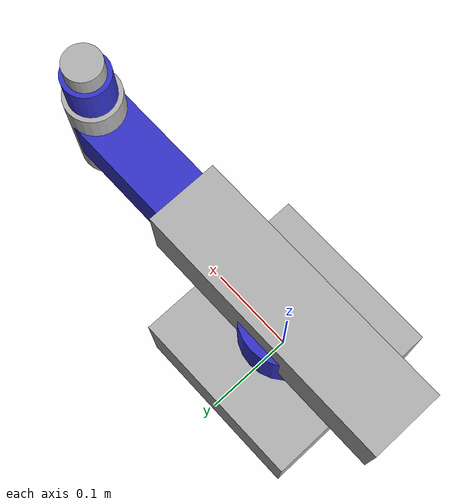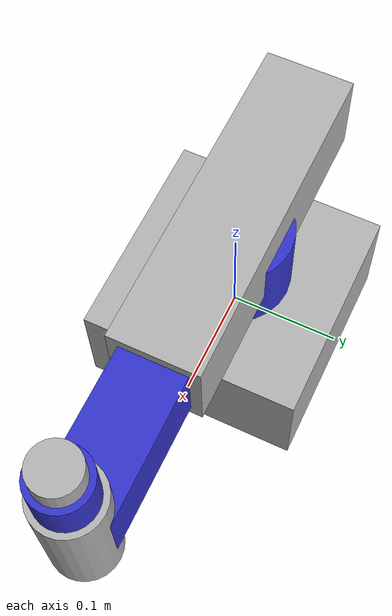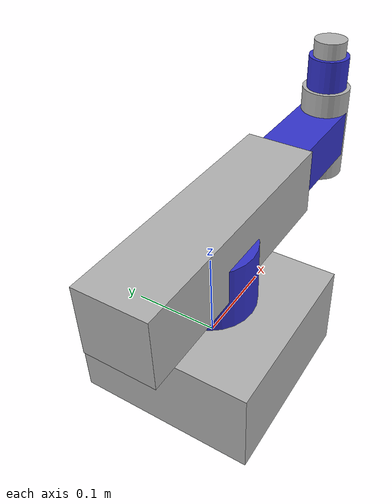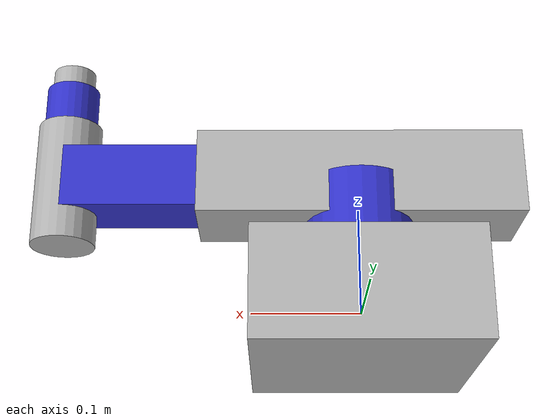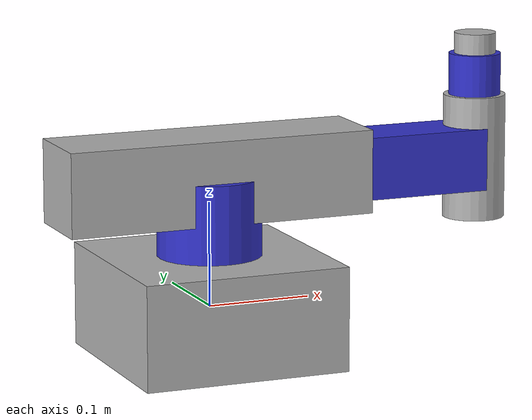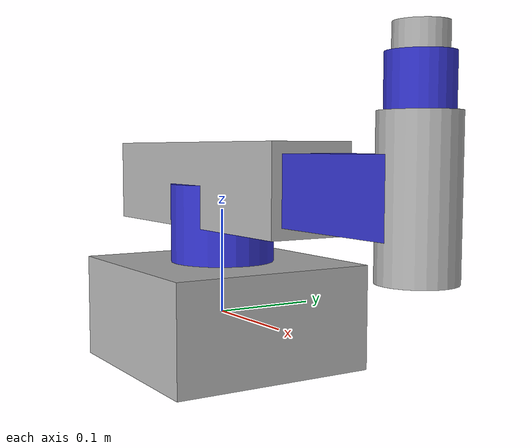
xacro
<?xml version="1.0"?>
<robot xmlns:xacro="http://www.ros.org/wiki/xacro" name="itri_arm">

  <!-- Import ros2_control description -->
  <xacro:include filename="$(find itri_arm)/urdf/itri_arm.ros2_control.xacro" />

  <!-- Define some colors -->
  <material name="grey">
    <color rgba="0.7 0.7 0.7 1"/>
  </material>

  <material name="blue">
    <color rgba="0.2 0.2 0.8 1"/>
  </material>

  <!-- Base link -->
  <link name="base_link">
    <visual>
      <geometry>
        <box size="0.2 0.2 0.1"/>
      </geometry>
      <material name="grey"/>
    </visual>
    <collision>
      <geometry>
        <box size="0.2 0.2 0.1"/>
      </geometry>
    </collision>
    <inertial>
      <mass value="1.0"/>
      <inertia ixx="0.01" ixy="0" ixz="0" iyy="0.01" iyz="0" izz="0.01"/>
    </inertial>
  </link>

  <!-- Link 1 -->
  <link name="link_1">
    <visual>
      <geometry>
        <cylinder length="0.15" radius="0.05"/>
      </geometry>
      <material name="blue"/>
    </visual>
    <collision>
      <geometry>
        <cylinder length="0.15" radius="0.05"/>
      </geometry>
    </collision>
    <inertial>
      <mass value="0.5"/>
      <inertia ixx="0.01" ixy="0" ixz="0" iyy="0.01" iyz="0" izz="0.01"/>
    </inertial>
  </link>

  <!-- Joint 1 -->
  <joint name="joint_1" type="revolute">
    <parent link="base_link"/>
    <child link="link_1"/>
    <origin xyz="0 0 0.05" rpy="0 0 0"/>
    <axis xyz="0 0 1"/>
    <limit lower="-3.14159" upper="3.14159" effort="100" velocity="1.0"/>
  </joint>

  <!-- Link 2 -->
  <link name="link_2">
    <visual>
      <geometry>
        <box size="0.3 0.08 0.08"/>
      </geometry>
      <material name="grey"/>
    </visual>
    <collision>
      <geometry>
        <box size="0.3 0.08 0.08"/>
      </geometry>
    </collision>
    <inertial>
      <mass value="0.8"/>
      <inertia ixx="0.01" ixy="0" ixz="0" iyy="0.01" iyz="0" izz="0.01"/>
    </inertial>
  </link>

  <!-- Joint 2 -->
  <joint name="joint_2" type="revolute">
    <parent link="link_1"/>
    <child link="link_2"/>
    <origin xyz="0 0 0.075" rpy="0 0 0"/>
    <axis xyz="0 1 0"/>
    <limit lower="-3.14159" upper="3.14159" effort="100" velocity="1.0"/>
  </joint>

  <!-- Link 3 -->
  <link name="link_3">
    <visual>
      <geometry>
        <box size="0.25 0.06 0.06"/>
      </geometry>
      <material name="blue"/>
    </visual>
    <collision>
      <geometry>
        <box size="0.25 0.06 0.06"/>
      </geometry>
    </collision>
    <inertial>
      <mass value="0.6"/>
      <inertia ixx="0.01" ixy="0" ixz="0" iyy="0.01" iyz="0" izz="0.01"/>
    </inertial>
  </link>

  <!-- Joint 3 -->
  <joint name="joint_3" type="revolute">
    <parent link="link_2"/>
    <child link="link_3"/>
    <origin xyz="0.15 0 0" rpy="0 0 0"/>
    <axis xyz="0 1 0"/>
    <limit lower="-3.14159" upper="3.14159" effort="50" velocity="1.0"/>
  </joint>

  <!-- Link 4 -->
  <link name="link_4">
    <visual>
      <geometry>
        <cylinder length="0.12" radius="0.03"/>
      </geometry>
      <material name="grey"/>
    </visual>
    <collision>
      <geometry>
        <cylinder length="0.12" radius="0.03"/>
      </geometry>
    </collision>
    <inertial>
      <mass value="0.3"/>
      <inertia ixx="0.01" ixy="0" ixz="0" iyy="0.01" iyz="0" izz="0.01"/>
    </inertial>
  </link>

  <!-- Joint 4 -->
  <joint name="joint_4" type="revolute">
    <parent link="link_3"/>
    <child link="link_4"/>
    <origin xyz="0.125 0 0" rpy="0 0 0"/>
    <axis xyz="1 0 0"/>
    <limit lower="-3.14159" upper="3.14159" effort="30" velocity="2.0"/>
  </joint>

  <!-- Link 5 -->
  <link name="link_5">
    <visual>
      <geometry>
        <cylinder length="0.08" radius="0.025"/>
      </geometry>
      <material name="blue"/>
    </visual>
    <collision>
      <geometry>
        <cylinder length="0.08" radius="0.025"/>
      </geometry>
    </collision>
    <inertial>
      <mass value="0.2"/>
      <inertia ixx="0.01" ixy="0" ixz="0" iyy="0.01" iyz="0" izz="0.01"/>
    </inertial>
  </link>

  <!-- Joint 5 -->
  <joint name="joint_5" type="revolute">
    <parent link="link_4"/>
    <child link="link_5"/>
    <origin xyz="0 0 0.06" rpy="0 0 0"/>
    <axis xyz="0 1 0"/>
    <limit lower="-3.14159" upper="3.14159" effort="30" velocity="2.0"/>
  </joint>

  <!-- Link 6 (End effector) -->
  <link name="link_6">
    <visual>
      <geometry>
        <cylinder length="0.04" radius="0.02"/>
      </geometry>
      <material name="grey"/>
    </visual>
    <collision>
      <geometry>
        <cylinder length="0.04" radius="0.02"/>
      </geometry>
    </collision>
    <inertial>
      <mass value="0.1"/>
      <inertia ixx="0.01" ixy="0" ixz="0" iyy="0.01" iyz="0" izz="0.01"/>
    </inertial>
  </link>

  <!-- Joint 6 -->
  <joint name="joint_6" type="revolute">
    <parent link="link_5"/>
    <child link="link_6"/>
    <origin xyz="0 0 0.04" rpy="0 0 0"/>
    <axis xyz="1 0 0"/>
    <limit lower="-3.14159" upper="3.14159" effort="20" velocity="3.0"/>
  </joint>

  <!-- End effector frame -->
  <link name="end_effector"/>
  <joint name="end_effector_joint" type="fixed">
    <parent link="link_6"/>
    <child link="end_effector"/>
    <origin xyz="0 0 0.02" rpy="0 0 0"/>
  </joint>

  <!-- Include ros2_control -->
  <xacro:itri_arm_ros2_control name="ItriArmHardware" initial_positions_file="" />

</robot>
